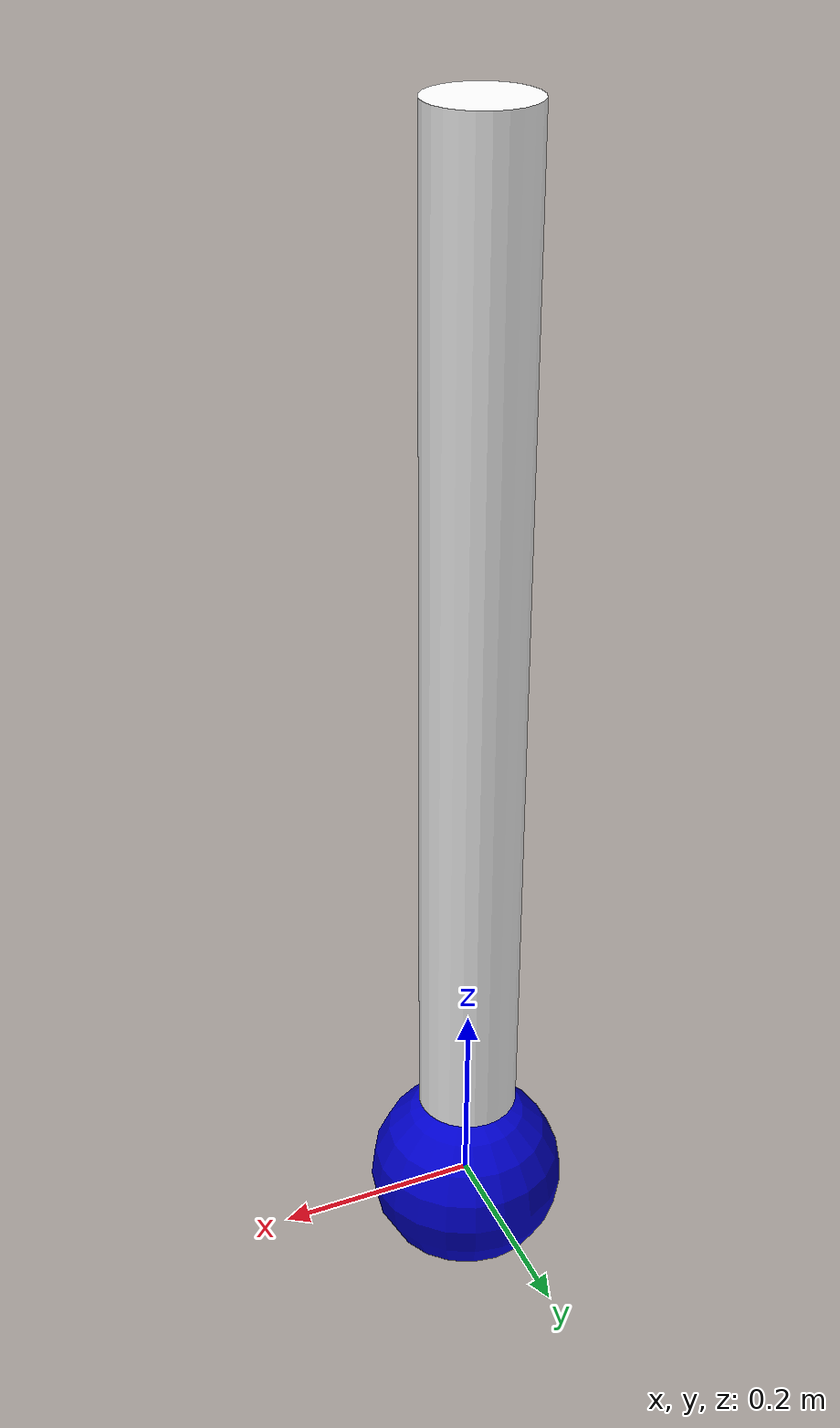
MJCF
<mujoco model="cartpole">
    <compiler angle="radian" meshdir="cartpole/stl/"/>
    <size njmax="500" nconmax="100"/>
    <default/>
    <worldbody>
        <body name="cartpole">
            <body name="odom_x" pos="0 0 0">
                <inertial pos="0 0 0" mass="0.01" diaginertia="0.01 0.01 0.01"/>
                <joint name="odom_x_joint" pos="0 0 0" axis="1 0 0" type="slide" limited="true" range="-1 1"/>
                <body name="cart" pos="0 0 0">
                    <inertial pos="0 0 0" mass="1" diaginertia="1 1 1"/>
                    <joint name="odom_y_joint" pos="0 0 0" axis="0 1 0" type="slide" limited="true" range="-1 1"/>
                    <geom size="0.1" rgba="0 0 0.8 1"/>
                    <body name="pole_x" pos="0 0 0">
                        <inertial pos="0 0 0" mass="0.01" diaginertia="0.01 0.01 0.01"/>
                        <joint name="cart_to_pole_x" pos="0 0 0" axis="1 0 0"/>
                        <body name="pole" pos="0 0 0">
                            <inertial pos="0 0 0.6" mass="10" diaginertia="1 1 1"/>
                            <joint name="pole_x_to_pole" pos="0 0 0" axis="0 1 0"/>
                            <geom size="0.05 0.5" pos="0 0 0.6" type="cylinder" rgba="1 1 1 1"/>
                        </body>
                    </body>
                </body>
            </body>
        </body>
    </worldbody>
    <equality/>
</mujoco>
